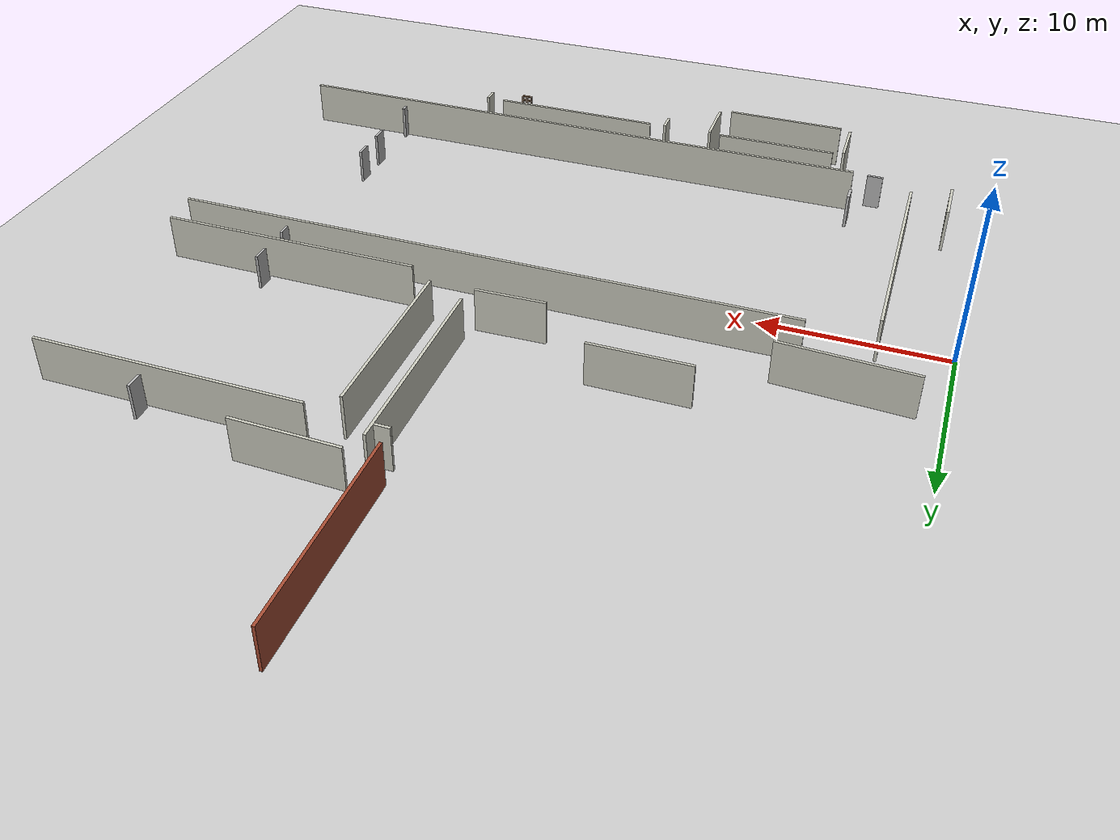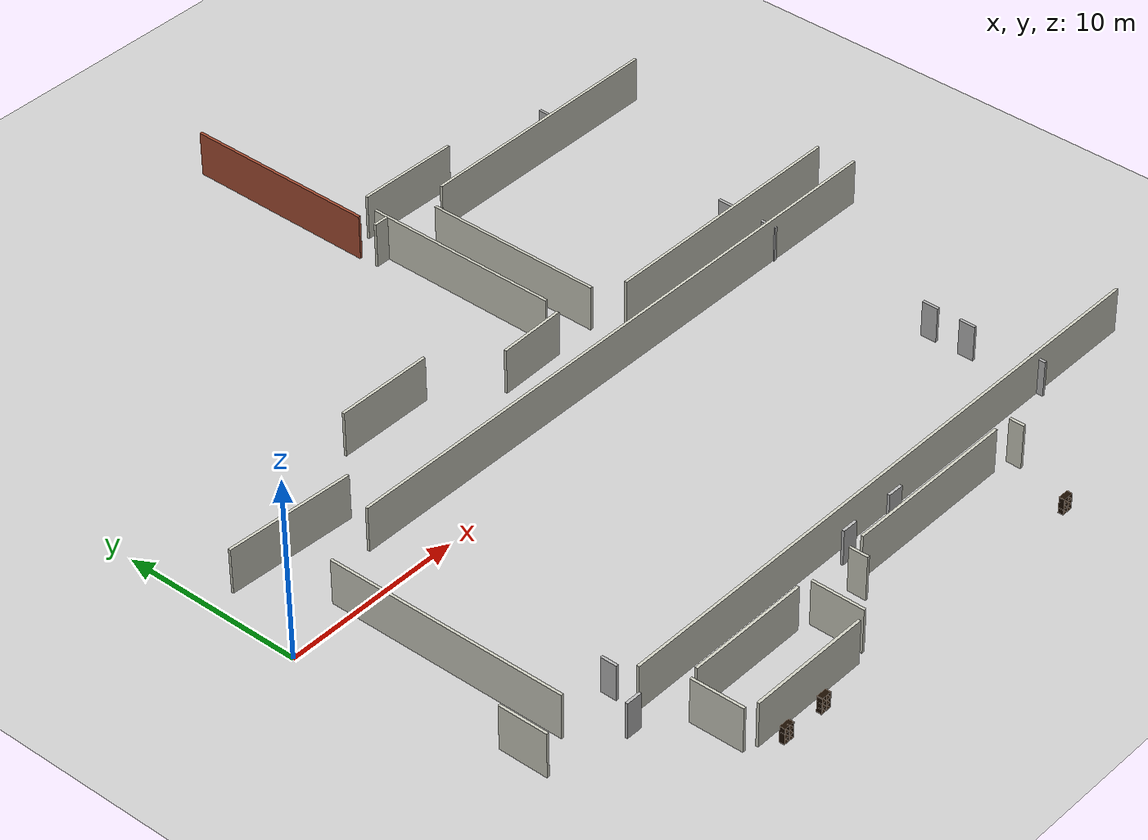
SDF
<sdf version="1.7">
 <world name="default">
  <model name="ground_plane">
   <static>1</static>
   <link name="link">
    <collision name="collision">
     <geometry><plane><normal>0 0 1</normal><size>100 100</size></plane></geometry>
     <surface><friction><ode><mu>100</mu><mu2>50</mu2></ode></friction></surface>
    </collision>
    <visual name="visual">
     <cast_shadows>0</cast_shadows>
     <geometry><plane><normal>0 0 1</normal><size>100 100</size></plane></geometry>
     <material>
      <ambient>1 1 1 1</ambient>
      <diffuse>0.8 0.8 0.8 1</diffuse>
      <specular>0.01 0.01 0.01 1</specular>
     </material>
    </visual>
   </link>
  </model>
  <model name="floorPlan">
   <pose>6.7155 -5.3556 0 0 -0 0</pose>
   <link name="Wall_105">
    <collision name="Wall_105_Collision">
     <geometry><box><size>10.83 0.15 2.5</size></box></geometry>
     <pose>0 0 1.25 0 -0 0</pose>
    </collision>
    <visual name="Wall_105_Visual">
     <pose>0 0 1.25 0 -0 0</pose>
     <geometry><box><size>10.83 0.15 2.5</size></box></geometry>
     <material>
      <script><uri>file://media/materials/scripts/gazebo.material</uri><name>Gazebo/Bricks</name></script>
      <ambient>1 1 1 1</ambient>
     </material>
     <meta><layer>0</layer></meta>
    </visual>
    <pose>16.1718 28.4394 0 0 0 -1.5708</pose>
   </link>
   <link name="Wall_107">
    <collision name="Wall_107_Collision">
     <geometry><box><size>0.83 0.15 2.5</size></box></geometry>
     <pose>0 0 1.25 0 -0 0</pose>
    </collision>
    <visual name="Wall_107_Visual">
     <pose>0 0 1.25 0 -0 0</pose>
     <geometry><box><size>0.83 0.15 2.5</size></box></geometry>
     <material>
      <script><uri>file://media/materials/scripts/gazebo.material</uri><name>Gazebo/PaintedWall</name></script>
      <ambient>1 1 1 1</ambient>
     </material>
     <meta><layer>0</layer></meta>
    </visual>
    <pose>16.5968 22.0144 0 0 -0 0</pose>
   </link>
   <link name="Wall_118">
    <collision name="Wall_118_Collision">
     <geometry><box><size>0.83 0.15 2.5</size></box></geometry>
     <pose>0 0 1.25 0 -0 0</pose>
    </collision>
    <visual name="Wall_118_Visual">
     <pose>0 0 1.25 0 -0 0</pose>
     <geometry><box><size>0.83 0.15 2.5</size></box></geometry>
     <material>
      <script><uri>file://media/materials/scripts/gazebo.material</uri><name>Gazebo/PaintedWall</name></script>
      <ambient>1 1 1 1</ambient>
     </material>
     <meta><layer>0</layer></meta>
    </visual>
    <pose>24.1778 -10.3922 0 0 0 -1.5708</pose>
   </link>
   <link name="Wall_120">
    <collision name="Wall_120_Collision">
     <geometry><box><size>9.79 0.15 2.5</size></box></geometry>
     <pose>0 0 1.25 0 -0 0</pose>
    </collision>
    <visual name="Wall_120_Visual">
     <pose>0 0 1.25 0 -0 0</pose>
     <geometry><box><size>9.79 0.15 2.5</size></box></geometry>
     <material>
      <script><uri>file://media/materials/scripts/gazebo.material</uri><name>Gazebo/PaintedWall</name></script>
      <ambient>1 1 1 1</ambient>
     </material>
     <meta><layer>0</layer></meta>
    </visual>
    <pose>18.2324 -9.96721 0 0 -0 3.14159</pose>
   </link>
   <link name="Wall_121">
    <collision name="Wall_121_Collision">
     <geometry><box><size>1.04 0.15 2.5</size></box></geometry>
     <pose>0 0 1.25 0 -0 0</pose>
    </collision>
    <visual name="Wall_121_Visual">
     <pose>0 0 1.25 0 -0 0</pose>
     <geometry><box><size>1.04 0.15 2.5</size></box></geometry>
     <material>
      <script><uri>file://media/materials/scripts/gazebo.material</uri><name>Gazebo/PaintedWall</name></script>
      <ambient>1 1 1 1</ambient>
     </material>
     <meta><layer>0</layer></meta>
    </visual>
    <pose>12.4324 -10.5172 0 0 0 -1.5708</pose>
   </link>
   <link name="Wall_164">
    <collision name="Wall_164_Collision">
     <geometry><box><size>2.71 0.15 2.5</size></box></geometry>
     <pose>0 0 1.25 0 -0 0</pose>
    </collision>
    <visual name="Wall_164_Visual">
     <pose>0 0 1.25 0 -0 0</pose>
     <geometry><box><size>2.71 0.15 2.5</size></box></geometry>
     <material>
      <script><uri>file://media/materials/scripts/gazebo.material</uri><name>Gazebo/PaintedWall</name></script>
      <ambient>1 1 1 1</ambient>
     </material>
     <meta><layer>0</layer></meta>
    </visual>
    <pose>-5.05442 -6.49986 0 0 -0 1.5708</pose>
   </link>
   <link name="Wall_23">
    <collision name="Wall_23_Collision">
     <geometry><box><size>13.33 0.15 2.5</size></box></geometry>
     <pose>0 0 1.25 0 -0 0</pose>
    </collision>
    <visual name="Wall_23_Visual">
     <pose>0 0 1.25 0 -0 0</pose>
     <geometry><box><size>13.33 0.15 2.5</size></box></geometry>
     <material>
      <script><uri>file://media/materials/scripts/gazebo.material</uri><name>Gazebo/PaintedWall</name></script>
      <ambient>1 1 1 1</ambient>
     </material>
     <meta><layer>0</layer></meta>
    </visual>
    <pose>-2.91083 -0.082161 0 0 0 -1.56638</pose>
   </link>
   <link name="Wall_234">
    <collision name="Wall_234_Collision">
     <geometry><box><size>2.92 0.15 2.5</size></box></geometry>
     <pose>0 0 1.25 0 -0 0</pose>
    </collision>
    <visual name="Wall_234_Visual">
     <pose>0 0 1.25 0 -0 0</pose>
     <geometry><box><size>2.92 0.15 2.5</size></box></geometry>
     <material>
      <script><uri>file://media/materials/scripts/gazebo.material</uri><name>Gazebo/PaintedWall</name></script>
      <ambient>1 1 1 1</ambient>
     </material>
     <meta><layer>0</layer></meta>
    </visual>
    <pose>1.44911 -11.6186 0 0 0 -1.55714</pose>
   </link>
   <link name="Wall_235">
    <collision name="Wall_235_Collision">
     <geometry><box><size>6.87 0.15 2.5</size></box></geometry>
     <pose>0 0 1.25 0 -0 0</pose>
    </collision>
    <visual name="Wall_235_Visual">
     <pose>0 0 1.25 0 -0 0</pose>
     <geometry><box><size>6.87 0.15 2.5</size></box></geometry>
     <material>
      <script><uri>file://media/materials/scripts/gazebo.material</uri><name>Gazebo/PaintedWall</name></script>
      <ambient>1 1 1 1</ambient>
     </material>
     <meta><layer>0</layer></meta>
    </visual>
    <pose>5.49911 -13.2936 0 0 -0 0</pose>
   </link>
   <link name="Wall_238">
    <collision name="Wall_238_Collision">
     <geometry><box><size>2.92 0.15 2.5</size></box></geometry>
     <pose>0 0 1.25 0 -0 0</pose>
    </collision>
    <visual name="Wall_238_Visual">
     <pose>0 0 1.25 0 -0 0</pose>
     <geometry><box><size>2.92 0.15 2.5</size></box></geometry>
     <material>
      <script><uri>file://media/materials/scripts/gazebo.material</uri><name>Gazebo/PaintedWall</name></script>
      <ambient>1 1 1 1</ambient>
     </material>
     <meta><layer>0</layer></meta>
    </visual>
    <pose>9.61374 -11.5957 0 0 0 -1.5708</pose>
   </link>
   <link name="Wall_240">
    <collision name="Wall_240_Collision">
     <geometry><box><size>6.87 0.15 2.5</size></box></geometry>
     <pose>0 0 1.25 0 -0 0</pose>
    </collision>
    <visual name="Wall_240_Visual">
     <pose>0 0 1.25 0 -0 0</pose>
     <geometry><box><size>6.87 0.15 2.5</size></box></geometry>
     <material>
      <script><uri>file://media/materials/scripts/gazebo.material</uri><name>Gazebo/PaintedWall</name></script>
      <ambient>1 1 1 1</ambient>
     </material>
     <meta><layer>0</layer></meta>
    </visual>
    <pose>5.47624 -9.94362 0 0 -0 0</pose>
   </link>
   <link name="Wall_28">
    <collision name="Wall_28_Collision">
     <geometry><box><size>34.75 0.15 2.5</size></box></geometry>
     <pose>0 0 1.25 0 -0 0</pose>
    </collision>
    <visual name="Wall_28_Visual">
     <pose>0 0 1.25 0 -0 0</pose>
     <geometry><box><size>34.75 0.15 2.5</size></box></geometry>
     <material>
      <script><uri>file://media/materials/scripts/gazebo.material</uri><name>Gazebo/PaintedWall</name></script>
      <ambient>1 1 1 1</ambient>
     </material>
     <meta><layer>0</layer></meta>
    </visual>
    <pose>17.9067 -8.00732 0 0 0 -8e-06</pose>
   </link>
   <link name="Wall_30">
    <collision name="Wall_30_Collision">
     <geometry><box><size>34.78 0.15 2.5</size></box></geometry>
     <pose>0 0 1.25 0 -0 0</pose>
    </collision>
    <visual name="Wall_30_Visual">
     <pose>0 0 1.25 0 -0 0</pose>
     <geometry><box><size>34.78 0.15 2.5</size></box></geometry>
     <material>
      <script><uri>file://media/materials/scripts/gazebo.material</uri><name>Gazebo/PaintedWall</name></script>
      <ambient>1 1 1 1</ambient>
     </material>
     <meta><layer>0</layer></meta>
    </visual>
    <pose>17.958 7.79684 0 0 -0 3.14159</pose>
   </link>
   <link name="Wall_33">
    <collision name="Wall_33_Collision">
     <geometry><box><size>7.1 0.15 2.5</size></box></geometry>
     <pose>0 0 1.25 0 -0 0</pose>
    </collision>
    <visual name="Wall_33_Visual">
     <pose>0 0 1.25 0 -0 0</pose>
     <geometry><box><size>7.1 0.15 2.5</size></box></geometry>
     <material>
      <script><uri>file://media/materials/scripts/gazebo.material</uri><name>Gazebo/PaintedWall</name></script>
      <ambient>1 1 1 1</ambient>
     </material>
     <meta><layer>0</layer></meta>
    </visual>
    <pose>-1.83025 10.1992 0 0 0 -0.056901</pose>
   </link>
   <link name="Wall_40">
    <collision name="Wall_40_Collision">
     <geometry><box><size>3.82 0.15 2.5</size></box></geometry>
     <pose>0 0 1.25 0 -0 0</pose>
    </collision>
    <visual name="Wall_40_Visual">
     <pose>0 0 1.25 0 -0 0</pose>
     <geometry><box><size>3.82 0.15 2.5</size></box></geometry>
     <material>
      <script><uri>file://media/materials/scripts/gazebo.material</uri><name>Gazebo/PaintedWall</name></script>
      <ambient>1 1 1 1</ambient>
     </material>
     <meta><layer>0</layer></meta>
    </visual>
    <pose>14.8546 10.7422 0 0 -0 0.027081</pose>
   </link>
   <link name="Wall_41">
    <collision name="Wall_41_Collision">
     <geometry><box><size>11.04 0.15 2.5</size></box></geometry>
     <pose>0 0 1.25 0 -0 0</pose>
    </collision>
    <visual name="Wall_41_Visual">
     <pose>0 0 1.25 0 -0 0</pose>
     <geometry><box><size>11.04 0.15 2.5</size></box></geometry>
     <material>
      <script><uri>file://media/materials/scripts/gazebo.material</uri><name>Gazebo/PaintedWall</name></script>
      <ambient>1 1 1 1</ambient>
     </material>
     <meta><layer>0</layer></meta>
    </visual>
    <pose>17.0696 17.3122 0 0 -0 1.5708</pose>
   </link>
   <link name="Wall_43">
    <collision name="Wall_43_Collision">
     <geometry><box><size>5.41 0.15 2.5</size></box></geometry>
     <pose>0 0 1.25 0 -0 0</pose>
    </collision>
    <visual name="Wall_43_Visual">
     <pose>0 0 1.25 0 -0 0</pose>
     <geometry><box><size>5.41 0.15 2.5</size></box></geometry>
     <material>
      <script><uri>file://media/materials/scripts/gazebo.material</uri><name>Gazebo/PaintedWall</name></script>
      <ambient>1 1 1 1</ambient>
     </material>
     <meta><layer>0</layer></meta>
    </visual>
    <pose>7.4365 13.1926 0 0 -0 0</pose>
   </link>
   <link name="Wall_45">
    <collision name="Wall_45_Collision">
     <geometry><box><size>14.58 0.15 2.5</size></box></geometry>
     <pose>0 0 1.25 0 -0 0</pose>
    </collision>
    <visual name="Wall_45_Visual">
     <pose>0 0 1.25 0 -0 0</pose>
     <geometry><box><size>14.58 0.15 2.5</size></box></geometry>
     <material>
      <script><uri>file://media/materials/scripts/gazebo.material</uri><name>Gazebo/PaintedWall</name></script>
      <ambient>1 1 1 1</ambient>
     </material>
     <meta><layer>0</layer></meta>
    </visual>
    <pose>27.8734 9.89578 0 0 -0 3.14159</pose>
   </link>
   <link name="Wall_46">
    <collision name="Wall_46_Collision">
     <geometry><box><size>10 0.15 2.5</size></box></geometry>
     <pose>0 0 1.25 0 -0 0</pose>
    </collision>
    <visual name="Wall_46_Visual">
     <pose>0 0 1.25 0 -0 0</pose>
     <geometry><box><size>10 0.15 2.5</size></box></geometry>
     <material>
      <script><uri>file://media/materials/scripts/gazebo.material</uri><name>Gazebo/PaintedWall</name></script>
      <ambient>1 1 1 1</ambient>
     </material>
     <meta><layer>0</layer></meta>
    </visual>
    <pose>19.1984 15.8208 0 0 -0 1.5708</pose>
   </link>
   <link name="Wall_59">
    <collision name="Wall_59_Collision">
     <geometry><box><size>14.58 0.15 2.5</size></box></geometry>
     <pose>0 0 1.25 0 -0 0</pose>
    </collision>
    <visual name="Wall_59_Visual">
     <pose>0 0 1.25 0 -0 0</pose>
     <geometry><box><size>14.58 0.15 2.5</size></box></geometry>
     <material>
      <script><uri>file://media/materials/scripts/gazebo.material</uri><name>Gazebo/PaintedWall</name></script>
      <ambient>1 1 1 1</ambient>
     </material>
     <meta><layer>0</layer></meta>
    </visual>
    <pose>27.8734 21.7458 0 0 -0 0</pose>
   </link>
   <link name="Wall_61">
    <collision name="Wall_61_Collision">
     <geometry><box><size>5.76 0.15 2.5</size></box></geometry>
     <pose>0 0 1.25 0 -0 0</pose>
    </collision>
    <visual name="Wall_61_Visual">
     <pose>0 0 1.25 0 -0 0</pose>
     <geometry><box><size>5.76 0.15 2.5</size></box></geometry>
     <material>
      <script><uri>file://media/materials/scripts/gazebo.material</uri><name>Gazebo/PaintedWall</name></script>
      <ambient>1 1 1 1</ambient>
     </material>
     <meta><layer>0</layer></meta>
    </visual>
    <pose>20.4546 23.8422 0 0 0 -0.017723</pose>
   </link>
   <static>1</static>
  </model>
  <model name="6_Cube_StorageE_clone_0">
   <link name="Wall_0">
    <pose>0 0 0.01 0 -0 0</pose>
    <inertial>
     <mass>1.6201</mass>
     <inertia><ixx>0.0119</ixx><iyy>0.0631</iyy><izz>0.0513</izz><ixy>0</ixy><ixz>0</ixz><iyz>0</iyz></inertia>
    </inertial>
    <collision name="Wall_0_Collision"><geometry><box><size>0.616 0.296 0.02</size></box></geometry></collision>
    <visual name="Wall_0_Visual">
     <geometry><box><size>0.616 0.296 0.02</size></box></geometry>
     <material>
      <script><uri>file://media/materials/scripts/gazebo.material</uri><name>Gazebo/Grey</name></script>
      <ambient>0.105882 0.0509804 0 1</ambient>
     </material>
    </visual>
   </link>
   <joint name="0_2" type="fixed">
    <pose>-0.308 0 0 0 -0 0</pose>
    <parent>Wall_2</parent>
    <child>Wall_0</child>
    <axis><xyz>1 0 0</xyz><limit><lower>-1e+16</lower><upper>1e+16</upper></limit></axis>
   </joint>
   <joint name="0_12" type="fixed">
    <parent>Wall_12</parent>
    <child>Wall_0</child>
    <axis><xyz>0 0 1</xyz><limit><lower>-1e+16</lower><upper>1e+16</upper></limit></axis>
   </joint>
   <joint name="0_4" type="fixed">
    <pose>0.308 0 0 0 -0 0</pose>
    <parent>Wall_4</parent>
    <child>Wall_0</child>
    <axis><xyz>1 0 0</xyz><limit><lower>-1e+16</lower><upper>1e+16</upper></limit></axis>
   </joint>
   <link name="Wall_10">
    <pose>0 0 0.61 0 -0 0</pose>
    <inertial>
     <mass>1.6201</mass>
     <inertia><ixx>0.0119</ixx><iyy>0.0631</iyy><izz>0.0513</izz><ixy>0</ixy><ixz>0</ixz><iyz>0</iyz></inertia>
    </inertial>
    <collision name="Wall_10_Collision"><geometry><box><size>0.616 0.296 0.02</size></box></geometry></collision>
    <visual name="Wall_10_Visual">
     <geometry><box><size>0.616 0.296 0.02</size></box></geometry>
     <material>
      <script><uri>file://media/materials/scripts/gazebo.material</uri><name>Gazebo/Grey</name></script>
      <ambient>0.105882 0.0509804 0 1</ambient>
     </material>
    </visual>
   </link>
   <joint name="10_2" type="fixed">
    <pose>-0.308 0 0 0 -0 0</pose>
    <parent>Wall_2</parent>
    <child>Wall_10</child>
    <axis><xyz>1 0 0</xyz><limit><lower>-1e+16</lower><upper>1e+16</upper></limit></axis>
   </joint>
   <joint name="10_12" type="fixed">
    <parent>Wall_12</parent>
    <child>Wall_10</child>
    <axis><xyz>0 0 1</xyz><limit><lower>-1e+16</lower><upper>1e+16</upper></limit></axis>
   </joint>
   <joint name="10_4" type="fixed">
    <pose>0.308 0 0 0 -0 0</pose>
    <parent>Wall_4</parent>
    <child>Wall_10</child>
    <axis><xyz>1 0 0</xyz><limit><lower>-1e+16</lower><upper>1e+16</upper></limit></axis>
   </joint>
   <link name="Wall_12">
    <pose>0 0 0.4575 0 -0 0</pose>
    <inertial>
     <mass>2.4065</mass>
     <inertia><ixx>0.0177</ixx><iyy>0.1855</iyy><izz>0.168</izz><ixy>0</ixy><ixz>0</ixz><iyz>0</iyz></inertia>
    </inertial>
    <collision name="Wall_12_Collision"><geometry><box><size>0.02 0.296 0.915</size></box></geometry></collision>
    <visual name="Wall_12_Visual">
     <geometry><box><size>0.02 0.296 0.915</size></box></geometry>
     <material>
      <script><uri>file://media/materials/scripts/gazebo.material</uri><name>Gazebo/Grey</name></script>
      <ambient>0.105882 0.0509804 0 1</ambient>
     </material>
    </visual>
   </link>
   <link name="Wall_2">
    <pose>-0.298 0 0.4575 0 -0 0</pose>
    <inertial>
     <mass>2.4065</mass>
     <inertia><ixx>0.0177</ixx><iyy>0.1855</iyy><izz>0.168</izz><ixy>0</ixy><ixz>0</ixz><iyz>0</iyz></inertia>
    </inertial>
    <collision name="Wall_2_Collision"><geometry><box><size>0.02 0.296 0.915</size></box></geometry></collision>
    <visual name="Wall_2_Visual">
     <geometry><box><size>0.02 0.296 0.915</size></box></geometry>
     <material>
      <script><uri>file://media/materials/scripts/gazebo.material</uri><name>Gazebo/Grey</name></script>
      <ambient>0.105882 0.0509804 0 1</ambient>
     </material>
    </visual>
   </link>
   <link name="Wall_4">
    <pose>0.298 0 0.4575 0 -0 0</pose>
    <inertial>
     <mass>2.4065</mass>
     <inertia><ixx>0.0177</ixx><iyy>0.1855</iyy><izz>0.168</izz><ixy>0</ixy><ixz>0</ixz><iyz>0</iyz></inertia>
    </inertial>
    <collision name="Wall_4_Collision"><geometry><box><size>0.02 0.296 0.915</size></box></geometry></collision>
    <visual name="Wall_4_Visual">
     <geometry><box><size>0.02 0.296 0.915</size></box></geometry>
     <material>
      <script><uri>file://media/materials/scripts/gazebo.material</uri><name>Gazebo/Grey</name></script>
      <ambient>0.105882 0.0509804 0 1</ambient>
     </material>
    </visual>
   </link>
   <link name="Wall_6">
    <pose>0 0 0.905 0 -0 0</pose>
    <inertial>
     <mass>1.6201</mass>
     <inertia><ixx>0.0119</ixx><iyy>0.0631</iyy><izz>0.0513</izz><ixy>0</ixy><ixz>0</ixz><iyz>0</iyz></inertia>
    </inertial>
    <collision name="Wall_6_Collision"><geometry><box><size>0.616 0.296 0.02</size></box></geometry></collision>
    <visual name="Wall_6_Visual">
     <geometry><box><size>0.616 0.296 0.02</size></box></geometry>
     <material>
      <script><uri>file://media/materials/scripts/gazebo.material</uri><name>Gazebo/Grey</name></script>
      <ambient>0.105882 0.0509804 0 1</ambient>
     </material>
    </visual>
   </link>
   <joint name="6_2" type="fixed">
    <pose>-0.308 0 0 0 -0 0</pose>
    <parent>Wall_2</parent>
    <child>Wall_6</child>
    <axis><xyz>2 0 0</xyz><limit><lower>-1e+16</lower><upper>1e+16</upper></limit></axis>
   </joint>
   <joint name="6_12" type="fixed">
    <parent>Wall_12</parent>
    <child>Wall_6</child>
    <axis><xyz>0 0 1</xyz><limit><lower>-1e+16</lower><upper>1e+16</upper></limit></axis>
   </joint>
   <joint name="6_4" type="fixed">
    <pose>0.308 0 0 0 -0 0</pose>
    <parent>Wall_4</parent>
    <child>Wall_6</child>
    <axis><xyz>1 0 0</xyz><limit><lower>-1e+16</lower><upper>1e+16</upper></limit></axis>
   </joint>
   <link name="Wall_8">
    <pose>0 0 0.305 0 -0 0</pose>
    <inertial>
     <mass>1.6201</mass>
     <inertia><ixx>0.0119</ixx><iyy>0.0631</iyy><izz>0.0513</izz><ixy>0</ixy><ixz>0</ixz><iyz>0</iyz></inertia>
    </inertial>
    <collision name="Wall_8_Collision"><geometry><box><size>0.616 0.296 0.02</size></box></geometry></collision>
    <visual name="Wall_8_Visual">
     <geometry><box><size>0.616 0.296 0.02</size></box></geometry>
     <material>
      <script><uri>file://media/materials/scripts/gazebo.material</uri><name>Gazebo/Grey</name></script>
      <ambient>0.105882 0.0509804 0 1</ambient>
     </material>
    </visual>
   </link>
   <joint name="8_2" type="fixed">
    <pose>-0.308 0 0 0 -0 0</pose>
    <parent>Wall_2</parent>
    <child>Wall_8</child>
    <axis><xyz>1 0 0</xyz><limit><lower>-1e+16</lower><upper>1e+16</upper></limit></axis>
   </joint>
   <joint name="8_12" type="fixed">
    <parent>Wall_12</parent>
    <child>Wall_8</child>
    <axis><xyz>0 0 1</xyz><limit><lower>-1e+16</lower><upper>1e+16</upper></limit></axis>
   </joint>
   <joint name="8_4" type="fixed">
    <pose>0.308 0 0 0 -0 0</pose>
    <parent>Wall_4</parent>
    <child>Wall_8</child>
    <axis><xyz>1 0 0</xyz><limit><lower>-1e+16</lower><upper>1e+16</upper></limit></axis>
   </joint>
   <static>1</static>
   <pose>9.90952 -19.3344 0 0 -0 0</pose>
  </model>
  <model name="6_Cube_StorageE_clone_1">
   <link name="Wall_0">
    <pose>0 0 0.01 0 -0 0</pose>
    <inertial>
     <mass>1.6201</mass>
     <inertia><ixx>0.0119</ixx><iyy>0.0631</iyy><izz>0.0513</izz><ixy>0</ixy><ixz>0</ixz><iyz>0</iyz></inertia>
    </inertial>
    <collision name="Wall_0_Collision"><geometry><box><size>0.616 0.296 0.02</size></box></geometry></collision>
    <visual name="Wall_0_Visual">
     <geometry><box><size>0.616 0.296 0.02</size></box></geometry>
     <material>
      <script><uri>file://media/materials/scripts/gazebo.material</uri><name>Gazebo/Grey</name></script>
      <ambient>0.105882 0.0509804 0 1</ambient>
     </material>
    </visual>
   </link>
   <joint name="0_2" type="fixed">
    <pose>-0.308 0 0 0 -0 0</pose>
    <parent>Wall_2</parent>
    <child>Wall_0</child>
    <axis><xyz>1 0 0</xyz><limit><lower>-1e+16</lower><upper>1e+16</upper></limit></axis>
   </joint>
   <joint name="0_12" type="fixed">
    <parent>Wall_12</parent>
    <child>Wall_0</child>
    <axis><xyz>0 0 1</xyz><limit><lower>-1e+16</lower><upper>1e+16</upper></limit></axis>
   </joint>
   <joint name="0_4" type="fixed">
    <pose>0.308 0 0 0 -0 0</pose>
    <parent>Wall_4</parent>
    <child>Wall_0</child>
    <axis><xyz>1 0 0</xyz><limit><lower>-1e+16</lower><upper>1e+16</upper></limit></axis>
   </joint>
   <link name="Wall_10">
    <pose>0 0 0.61 0 -0 0</pose>
    <inertial>
     <mass>1.6201</mass>
     <inertia><ixx>0.0119</ixx><iyy>0.0631</iyy><izz>0.0513</izz><ixy>0</ixy><ixz>0</ixz><iyz>0</iyz></inertia>
    </inertial>
    <collision name="Wall_10_Collision"><geometry><box><size>0.616 0.296 0.02</size></box></geometry></collision>
    <visual name="Wall_10_Visual">
     <geometry><box><size>0.616 0.296 0.02</size></box></geometry>
     <material>
      <script><uri>file://media/materials/scripts/gazebo.material</uri><name>Gazebo/Grey</name></script>
      <ambient>0.105882 0.0509804 0 1</ambient>
     </material>
    </visual>
   </link>
   <joint name="10_2" type="fixed">
    <pose>-0.308 0 0 0 -0 0</pose>
    <parent>Wall_2</parent>
    <child>Wall_10</child>
    <axis><xyz>1 0 0</xyz><limit><lower>-1e+16</lower><upper>1e+16</upper></limit></axis>
   </joint>
   <joint name="10_12" type="fixed">
    <parent>Wall_12</parent>
    <child>Wall_10</child>
    <axis><xyz>0 0 1</xyz><limit><lower>-1e+16</lower><upper>1e+16</upper></limit></axis>
   </joint>
   <joint name="10_4" type="fixed">
    <pose>0.308 0 0 0 -0 0</pose>
    <parent>Wall_4</parent>
    <child>Wall_10</child>
    <axis><xyz>1 0 0</xyz><limit><lower>-1e+16</lower><upper>1e+16</upper></limit></axis>
   </joint>
   <link name="Wall_12">
    <pose>0 0 0.4575 0 -0 0</pose>
    <inertial>
     <mass>2.4065</mass>
     <inertia><ixx>0.0177</ixx><iyy>0.1855</iyy><izz>0.168</izz><ixy>0</ixy><ixz>0</ixz><iyz>0</iyz></inertia>
    </inertial>
    <collision name="Wall_12_Collision"><geometry><box><size>0.02 0.296 0.915</size></box></geometry></collision>
    <visual name="Wall_12_Visual">
     <geometry><box><size>0.02 0.296 0.915</size></box></geometry>
     <material>
      <script><uri>file://media/materials/scripts/gazebo.material</uri><name>Gazebo/Grey</name></script>
      <ambient>0.105882 0.0509804 0 1</ambient>
     </material>
    </visual>
   </link>
   <link name="Wall_2">
    <pose>-0.298 0 0.4575 0 -0 0</pose>
    <inertial>
     <mass>2.4065</mass>
     <inertia><ixx>0.0177</ixx><iyy>0.1855</iyy><izz>0.168</izz><ixy>0</ixy><ixz>0</ixz><iyz>0</iyz></inertia>
    </inertial>
    <collision name="Wall_2_Collision"><geometry><box><size>0.02 0.296 0.915</size></box></geometry></collision>
    <visual name="Wall_2_Visual">
     <geometry><box><size>0.02 0.296 0.915</size></box></geometry>
     <material>
      <script><uri>file://media/materials/scripts/gazebo.material</uri><name>Gazebo/Grey</name></script>
      <ambient>0.105882 0.0509804 0 1</ambient>
     </material>
    </visual>
   </link>
   <link name="Wall_4">
    <pose>0.298 0 0.4575 0 -0 0</pose>
    <inertial>
     <mass>2.4065</mass>
     <inertia><ixx>0.0177</ixx><iyy>0.1855</iyy><izz>0.168</izz><ixy>0</ixy><ixz>0</ixz><iyz>0</iyz></inertia>
    </inertial>
    <collision name="Wall_4_Collision"><geometry><box><size>0.02 0.296 0.915</size></box></geometry></collision>
    <visual name="Wall_4_Visual">
     <geometry><box><size>0.02 0.296 0.915</size></box></geometry>
     <material>
      <script><uri>file://media/materials/scripts/gazebo.material</uri><name>Gazebo/Grey</name></script>
      <ambient>0.105882 0.0509804 0 1</ambient>
     </material>
    </visual>
   </link>
   <link name="Wall_6">
    <pose>0 0 0.905 0 -0 0</pose>
    <inertial>
     <mass>1.6201</mass>
     <inertia><ixx>0.0119</ixx><iyy>0.0631</iyy><izz>0.0513</izz><ixy>0</ixy><ixz>0</ixz><iyz>0</iyz></inertia>
    </inertial>
    <collision name="Wall_6_Collision"><geometry><box><size>0.616 0.296 0.02</size></box></geometry></collision>
    <visual name="Wall_6_Visual">
     <geometry><box><size>0.616 0.296 0.02</size></box></geometry>
     <material>
      <script><uri>file://media/materials/scripts/gazebo.material</uri><name>Gazebo/Grey</name></script>
      <ambient>0.105882 0.0509804 0 1</ambient>
     </material>
    </visual>
   </link>
   <joint name="6_2" type="fixed">
    <pose>-0.308 0 0 0 -0 0</pose>
    <parent>Wall_2</parent>
    <child>Wall_6</child>
    <axis><xyz>2 0 0</xyz><limit><lower>-1e+16</lower><upper>1e+16</upper></limit></axis>
   </joint>
   <joint name="6_12" type="fixed">
    <parent>Wall_12</parent>
    <child>Wall_6</child>
    <axis><xyz>0 0 1</xyz><limit><lower>-1e+16</lower><upper>1e+16</upper></limit></axis>
   </joint>
   <joint name="6_4" type="fixed">
    <pose>0.308 0 0 0 -0 0</pose>
    <parent>Wall_4</parent>
    <child>Wall_6</child>
    <axis><xyz>1 0 0</xyz><limit><lower>-1e+16</lower><upper>1e+16</upper></limit></axis>
   </joint>
   <link name="Wall_8">
    <pose>0 0 0.305 0 -0 0</pose>
    <inertial>
     <mass>1.6201</mass>
     <inertia><ixx>0.0119</ixx><iyy>0.0631</iyy><izz>0.0513</izz><ixy>0</ixy><ixz>0</ixz><iyz>0</iyz></inertia>
    </inertial>
    <collision name="Wall_8_Collision"><geometry><box><size>0.616 0.296 0.02</size></box></geometry></collision>
    <visual name="Wall_8_Visual">
     <geometry><box><size>0.616 0.296 0.02</size></box></geometry>
     <material>
      <script><uri>file://media/materials/scripts/gazebo.material</uri><name>Gazebo/Grey</name></script>
      <ambient>0.105882 0.0509804 0 1</ambient>
     </material>
    </visual>
   </link>
   <joint name="8_2" type="fixed">
    <pose>-0.308 0 0 0 -0 0</pose>
    <parent>Wall_2</parent>
    <child>Wall_8</child>
    <axis><xyz>1 0 0</xyz><limit><lower>-1e+16</lower><upper>1e+16</upper></limit></axis>
   </joint>
   <joint name="8_12" type="fixed">
    <parent>Wall_12</parent>
    <child>Wall_8</child>
    <axis><xyz>0 0 1</xyz><limit><lower>-1e+16</lower><upper>1e+16</upper></limit></axis>
   </joint>
   <joint name="8_4" type="fixed">
    <pose>0.308 0 0 0 -0 0</pose>
    <parent>Wall_4</parent>
    <child>Wall_8</child>
    <axis><xyz>1 0 0</xyz><limit><lower>-1e+16</lower><upper>1e+16</upper></limit></axis>
   </joint>
   <static>1</static>
   <pose>12.3907 -19.356 0 0 -0 0</pose>
  </model>
  <model name="6_Cube_StorageE_clone_5">
   <link name="Wall_0">
    <pose>0 0 0.01 0 -0 0</pose>
    <inertial>
     <mass>1.6201</mass>
     <inertia><ixx>0.0119</ixx><iyy>0.0631</iyy><izz>0.0513</izz><ixy>0</ixy><ixz>0</ixz><iyz>0</iyz></inertia>
    </inertial>
    <collision name="Wall_0_Collision"><geometry><box><size>0.616 0.296 0.02</size></box></geometry></collision>
    <visual name="Wall_0_Visual">
     <geometry><box><size>0.616 0.296 0.02</size></box></geometry>
     <material>
      <script><uri>file://media/materials/scripts/gazebo.material</uri><name>Gazebo/Grey</name></script>
      <ambient>0.105882 0.0509804 0 1</ambient>
     </material>
    </visual>
   </link>
   <joint name="0_2" type="fixed">
    <pose>-0.308 0 0 0 -0 0</pose>
    <parent>Wall_2</parent>
    <child>Wall_0</child>
    <axis><xyz>1 0 0</xyz><limit><lower>-1e+16</lower><upper>1e+16</upper></limit></axis>
   </joint>
   <joint name="0_12" type="fixed">
    <parent>Wall_12</parent>
    <child>Wall_0</child>
    <axis><xyz>0 0 1</xyz><limit><lower>-1e+16</lower><upper>1e+16</upper></limit></axis>
   </joint>
   <joint name="0_4" type="fixed">
    <pose>0.308 0 0 0 -0 0</pose>
    <parent>Wall_4</parent>
    <child>Wall_0</child>
    <axis><xyz>1 0 0</xyz><limit><lower>-1e+16</lower><upper>1e+16</upper></limit></axis>
   </joint>
   <link name="Wall_10">
    <pose>0 0 0.61 0 -0 0</pose>
    <inertial>
     <mass>1.6201</mass>
     <inertia><ixx>0.0119</ixx><iyy>0.0631</iyy><izz>0.0513</izz><ixy>0</ixy><ixz>0</ixz><iyz>0</iyz></inertia>
    </inertial>
    <collision name="Wall_10_Collision"><geometry><box><size>0.616 0.296 0.02</size></box></geometry></collision>
    <visual name="Wall_10_Visual">
     <geometry><box><size>0.616 0.296 0.02</size></box></geometry>
     <material>
      <script><uri>file://media/materials/scripts/gazebo.material</uri><name>Gazebo/Grey</name></script>
      <ambient>0.105882 0.0509804 0 1</ambient>
     </material>
    </visual>
   </link>
   <joint name="10_2" type="fixed">
    <pose>-0.308 0 0 0 -0 0</pose>
    <parent>Wall_2</parent>
    <child>Wall_10</child>
    <axis><xyz>1 0 0</xyz><limit><lower>-1e+16</lower><upper>1e+16</upper></limit></axis>
   </joint>
   <joint name="10_12" type="fixed">
    <parent>Wall_12</parent>
    <child>Wall_10</child>
    <axis><xyz>0 0 1</xyz><limit><lower>-1e+16</lower><upper>1e+16</upper></limit></axis>
   </joint>
   <joint name="10_4" type="fixed">
    <pose>0.308 0 0 0 -0 0</pose>
    <parent>Wall_4</parent>
    <child>Wall_10</child>
    <axis><xyz>1 0 0</xyz><limit><lower>-1e+16</lower><upper>1e+16</upper></limit></axis>
   </joint>
   <link name="Wall_12">
    <pose>0 0 0.4575 0 -0 0</pose>
    <inertial>
     <mass>2.4065</mass>
     <inertia><ixx>0.0177</ixx><iyy>0.1855</iyy><izz>0.168</izz><ixy>0</ixy><ixz>0</ixz><iyz>0</iyz></inertia>
    </inertial>
    <collision name="Wall_12_Collision"><geometry><box><size>0.02 0.296 0.915</size></box></geometry></collision>
    <visual name="Wall_12_Visual">
     <geometry><box><size>0.02 0.296 0.915</size></box></geometry>
     <material>
      <script><uri>file://media/materials/scripts/gazebo.material</uri><name>Gazebo/Grey</name></script>
      <ambient>0.105882 0.0509804 0 1</ambient>
     </material>
    </visual>
   </link>
   <link name="Wall_2">
    <pose>-0.298 0 0.4575 0 -0 0</pose>
    <inertial>
     <mass>2.4065</mass>
     <inertia><ixx>0.0177</ixx><iyy>0.1855</iyy><izz>0.168</izz><ixy>0</ixy><ixz>0</ixz><iyz>0</iyz></inertia>
    </inertial>
    <collision name="Wall_2_Collision"><geometry><box><size>0.02 0.296 0.915</size></box></geometry></collision>
    <visual name="Wall_2_Visual">
     <geometry><box><size>0.02 0.296 0.915</size></box></geometry>
     <material>
      <script><uri>file://media/materials/scripts/gazebo.material</uri><name>Gazebo/Grey</name></script>
      <ambient>0.105882 0.0509804 0 1</ambient>
     </material>
    </visual>
   </link>
   <link name="Wall_4">
    <pose>0.298 0 0.4575 0 -0 0</pose>
    <inertial>
     <mass>2.4065</mass>
     <inertia><ixx>0.0177</ixx><iyy>0.1855</iyy><izz>0.168</izz><ixy>0</ixy><ixz>0</ixz><iyz>0</iyz></inertia>
    </inertial>
    <collision name="Wall_4_Collision"><geometry><box><size>0.02 0.296 0.915</size></box></geometry></collision>
    <visual name="Wall_4_Visual">
     <geometry><box><size>0.02 0.296 0.915</size></box></geometry>
     <material>
      <script><uri>file://media/materials/scripts/gazebo.material</uri><name>Gazebo/Grey</name></script>
      <ambient>0.105882 0.0509804 0 1</ambient>
     </material>
    </visual>
   </link>
   <link name="Wall_6">
    <pose>0 0 0.905 0 -0 0</pose>
    <inertial>
     <mass>1.6201</mass>
     <inertia><ixx>0.0119</ixx><iyy>0.0631</iyy><izz>0.0513</izz><ixy>0</ixy><ixz>0</ixz><iyz>0</iyz></inertia>
    </inertial>
    <collision name="Wall_6_Collision"><geometry><box><size>0.616 0.296 0.02</size></box></geometry></collision>
    <visual name="Wall_6_Visual">
     <geometry><box><size>0.616 0.296 0.02</size></box></geometry>
     <material>
      <script><uri>file://media/materials/scripts/gazebo.material</uri><name>Gazebo/Grey</name></script>
      <ambient>0.105882 0.0509804 0 1</ambient>
     </material>
    </visual>
   </link>
   <joint name="6_2" type="fixed">
    <pose>-0.308 0 0 0 -0 0</pose>
    <parent>Wall_2</parent>
    <child>Wall_6</child>
    <axis><xyz>2 0 0</xyz><limit><lower>-1e+16</lower><upper>1e+16</upper></limit></axis>
   </joint>
   <joint name="6_12" type="fixed">
    <parent>Wall_12</parent>
    <child>Wall_6</child>
    <axis><xyz>0 0 1</xyz><limit><lower>-1e+16</lower><upper>1e+16</upper></limit></axis>
   </joint>
   <joint name="6_4" type="fixed">
    <pose>0.308 0 0 0 -0 0</pose>
    <parent>Wall_4</parent>
    <child>Wall_6</child>
    <axis><xyz>1 0 0</xyz><limit><lower>-1e+16</lower><upper>1e+16</upper></limit></axis>
   </joint>
   <link name="Wall_8">
    <pose>0 0 0.305 0 -0 0</pose>
    <inertial>
     <mass>1.6201</mass>
     <inertia><ixx>0.0119</ixx><iyy>0.0631</iyy><izz>0.0513</izz><ixy>0</ixy><ixz>0</ixz><iyz>0</iyz></inertia>
    </inertial>
    <collision name="Wall_8_Collision"><geometry><box><size>0.616 0.296 0.02</size></box></geometry></collision>
    <visual name="Wall_8_Visual">
     <geometry><box><size>0.616 0.296 0.02</size></box></geometry>
     <material>
      <script><uri>file://media/materials/scripts/gazebo.material</uri><name>Gazebo/Grey</name></script>
      <ambient>0.105882 0.0509804 0 1</ambient>
     </material>
    </visual>
   </link>
   <joint name="8_2" type="fixed">
    <pose>-0.308 0 0 0 -0 0</pose>
    <parent>Wall_2</parent>
    <child>Wall_8</child>
    <axis><xyz>1 0 0</xyz><limit><lower>-1e+16</lower><upper>1e+16</upper></limit></axis>
   </joint>
   <joint name="8_12" type="fixed">
    <parent>Wall_12</parent>
    <child>Wall_8</child>
    <axis><xyz>0 0 1</xyz><limit><lower>-1e+16</lower><upper>1e+16</upper></limit></axis>
   </joint>
   <joint name="8_4" type="fixed">
    <pose>0.308 0 0 0 -0 0</pose>
    <parent>Wall_4</parent>
    <child>Wall_8</child>
    <axis><xyz>1 0 0</xyz><limit><lower>-1e+16</lower><upper>1e+16</upper></limit></axis>
   </joint>
   <static>1</static>
   <pose>29.7278 -19.4199 0 0 -0 0</pose>
  </model>
  <model name="door">
   <link name="link_0">
    <visual name="visual">
     <pose>0 0 1 0 -0 0</pose>
     <geometry><box><size>0.9 0.15 2</size></box></geometry>
     <material>
      <script>
       <uri>model://door/materials/scripts</uri>
       <uri>model://door/materials/textures</uri>
       <name>door</name>
      </script>
     </material>
    </visual>
    <collision name="collision">
     <pose>0 0 1 0 -0 0</pose>
     <geometry><box><size>0.9 0.15 2</size></box></geometry>
    </collision>
   </link>
   <static>1</static>
   <pose>35.818 -13.3435 0 0 -0 1.56387</pose>
  </model>
  <model name="door_clone">
   <link name="link_0">
    <visual name="visual">
     <pose>0 0 1 0 -0 0</pose>
     <geometry><box><size>0.9 0.15 2</size></box></geometry>
     <material>
      <script>
       <uri>model://door/materials/scripts</uri>
       <uri>model://door/materials/textures</uri>
       <name>door</name>
      </script>
     </material>
    </visual>
    <collision name="collision">
     <pose>0 0 1 0 -0 0</pose>
     <geometry><box><size>0.9 0.15 2</size></box></geometry>
    </collision>
   </link>
   <static>1</static>
   <pose>35.8275 -9.26952 0 0 -0 1.56387</pose>
  </model>
  <model name="door_clone_0">
   <link name="link_0">
    <visual name="visual">
     <pose>0 0 1 0 -0 0</pose>
     <geometry><box><size>0.9 0.15 2</size></box></geometry>
     <material>
      <script>
       <uri>model://door/materials/scripts</uri>
       <uri>model://door/materials/textures</uri>
       <name>door</name>
      </script>
     </material>
    </visual>
    <collision name="collision">
     <pose>0 0 1 0 -0 0</pose>
     <geometry><box><size>0.9 0.15 2</size></box></geometry>
    </collision>
   </link>
   <static>1</static>
   <pose>35.8268 -7.0895 0 0 -0 1.56387</pose>
  </model>
  <model name="door_clone_1">
   <link name="link_0">
    <visual name="visual">
     <pose>0 0 1 0 -0 0</pose>
     <geometry><box><size>0.9 0.15 2</size></box></geometry>
     <material>
      <script>
       <uri>model://door/materials/scripts</uri>
       <uri>model://door/materials/textures</uri>
       <name>door</name>
      </script>
     </material>
    </visual>
    <collision name="collision">
     <pose>0 0 1 0 -0 0</pose>
     <geometry><box><size>0.9 0.15 2</size></box></geometry>
    </collision>
   </link>
   <static>1</static>
   <pose>35.8304 5.40636 0 0 -0 1.56387</pose>
  </model>
  <model name="door_clone_2">
   <link name="link_0">
    <visual name="visual">
     <pose>0 0 1 0 -0 0</pose>
     <geometry><box><size>0.9 0.15 2</size></box></geometry>
     <material>
      <script>
       <uri>model://door/materials/scripts</uri>
       <uri>model://door/materials/textures</uri>
       <name>door</name>
      </script>
     </material>
    </visual>
    <collision name="collision">
     <pose>0 0 1 0 -0 0</pose>
     <geometry><box><size>0.9 0.15 2</size></box></geometry>
    </collision>
   </link>
   <static>1</static>
   <pose>35.8212 2.73954 0 0 -0 1.56387</pose>
  </model>
  <model name="door_clone_3">
   <link name="link_0">
    <visual name="visual">
     <pose>0 0 1 0 -0 0</pose>
     <geometry><box><size>0.9 0.15 2</size></box></geometry>
     <material>
      <script>
       <uri>model://door/materials/scripts</uri>
       <uri>model://door/materials/textures</uri>
       <name>door</name>
      </script>
     </material>
    </visual>
    <collision name="collision">
     <pose>0 0 1 0 -0 0</pose>
     <geometry><box><size>0.9 0.15 2</size></box></geometry>
    </collision>
   </link>
   <static>1</static>
   <pose>35.841 17.0864 0 0 -0 1.56387</pose>
  </model>
  <model name="door_clone_4">
   <link name="link_0">
    <visual name="visual">
     <pose>0 0 1 0 -0 0</pose>
     <geometry><box><size>0.9 0.15 2</size></box></geometry>
     <material>
      <script>
       <uri>model://door/materials/scripts</uri>
       <uri>model://door/materials/textures</uri>
       <name>door</name>
      </script>
     </material>
    </visual>
    <collision name="collision">
     <pose>0 0 1 0 -0 0</pose>
     <geometry><box><size>0.9 0.15 2</size></box></geometry>
    </collision>
   </link>
   <static>1</static>
   <pose>7.18197 -11.8175 -0.070114 0 -0 1.56387</pose>
  </model>
  <model name="door_clone_10">
   <link name="link_0">
    <visual name="visual">
     <pose>0 0 1 0 -0 0</pose>
     <geometry><box><size>0.9 0.15 2</size></box></geometry>
     <material>
      <script>
       <uri>model://door/materials/scripts</uri>
       <uri>model://door/materials/textures</uri>
       <name>door</name>
      </script>
     </material>
    </visual>
    <collision name="collision">
     <pose>0 0 1 0 -0 0</pose>
     <geometry><box><size>0.9 0.15 2</size></box></geometry>
    </collision>
   </link>
   <static>1</static>
   <pose>23.9606 -14.1373 0 0 0 -0.012925</pose>
  </model>
  <model name="door_clone_10_clone">
   <link name="link_0">
    <visual name="visual">
     <pose>0 0 1 0 -0 0</pose>
     <geometry><box><size>0.9 0.15 2</size></box></geometry>
     <material>
      <script>
       <uri>model://door/materials/scripts</uri>
       <uri>model://door/materials/textures</uri>
       <name>door</name>
      </script>
     </material>
    </visual>
    <collision name="collision">
     <pose>0 0 1 0 -0 0</pose>
     <geometry><box><size>0.9 0.15 2</size></box></geometry>
    </collision>
   </link>
   <static>1</static>
   <pose>20.7131 -14.1216 0 0 0 -0.012925</pose>
  </model>
  <model name="door_clone_10_clone_0">
   <link name="link_0">
    <visual name="visual">
     <pose>0 0 1 0 -0 0</pose>
     <geometry><box><size>0.9 0.15 2</size></box></geometry>
     <material>
      <script>
       <uri>model://door/materials/scripts</uri>
       <uri>model://door/materials/textures</uri>
       <name>door</name>
      </script>
     </material>
    </visual>
    <collision name="collision">
     <pose>0 0 1 0 -0 0</pose>
     <geometry><box><size>0.9 0.15 2</size></box></geometry>
    </collision>
   </link>
   <static>1</static>
   <pose>6.02933 -14.1449 0 0 0 -0.012925</pose>
  </model>
 </world>
</sdf>
